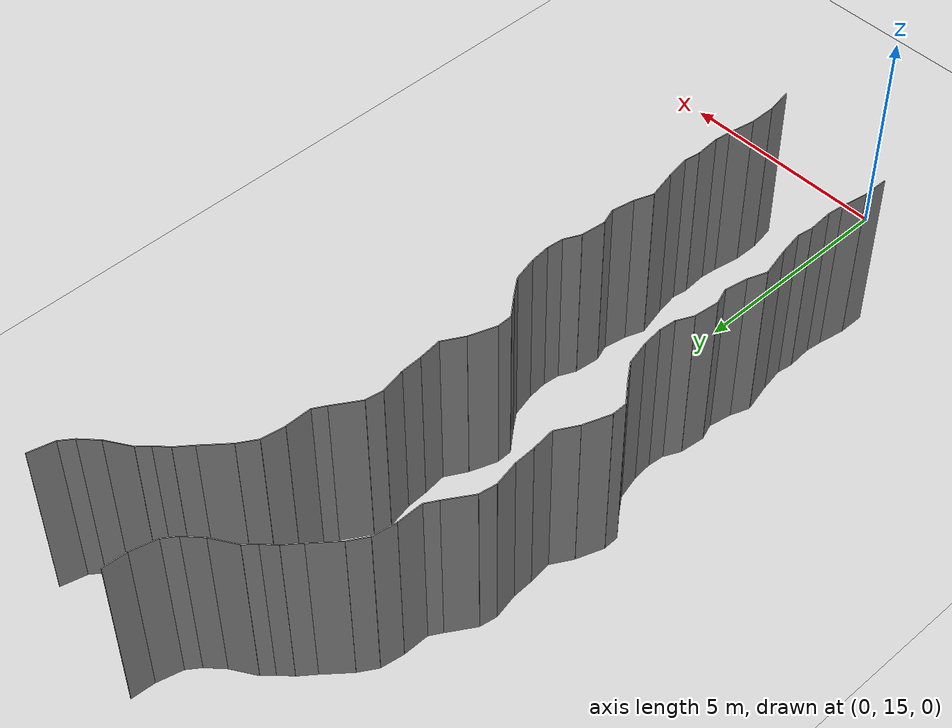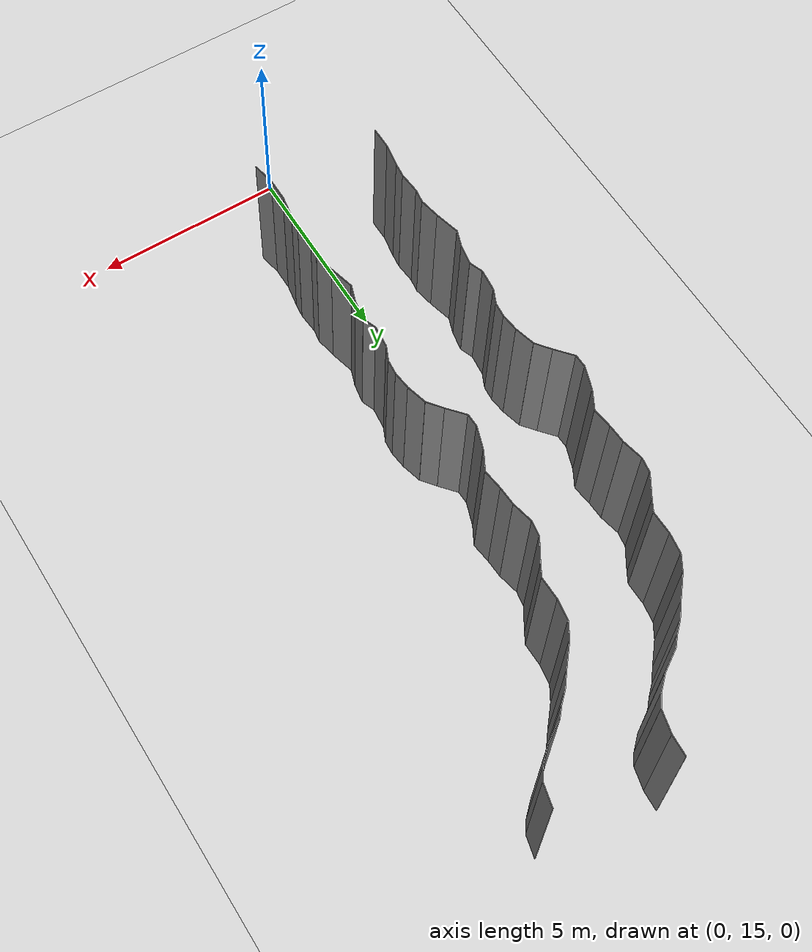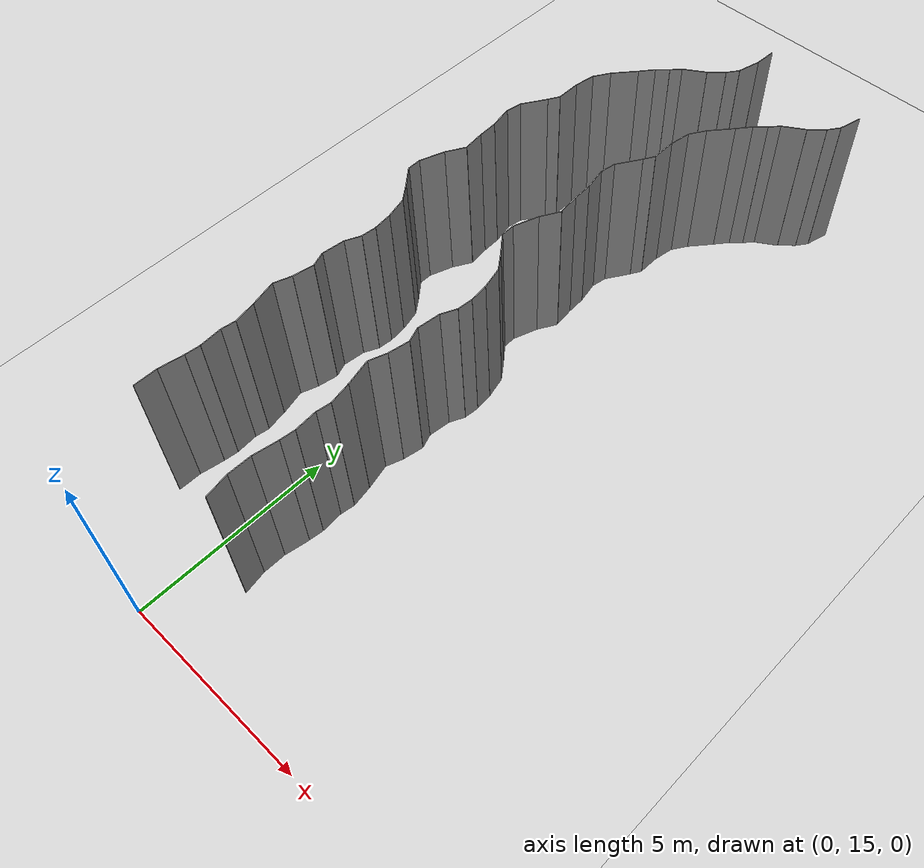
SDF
<sdf version="1.6">
 <world name="default">
  <model name="ground_plane">
   <static>1</static>
   <link name="link">
    <collision name="collision">
     <geometry><plane><normal>0 0 1</normal><size>200 200</size></plane></geometry>
     <surface><friction><ode><mu>100</mu><mu2>50</mu2></ode></friction></surface>
    </collision>
    <visual name="visual">
     <cast_shadows>0</cast_shadows>
     <geometry><plane><normal>0 0 1</normal><size>200 200</size></plane></geometry>
     <material>
      <script><uri>file://media/materials/scripts/gazebo.material</uri><name>Gazebo/Grey</name></script>
     </material>
    </visual>
   </link>
   <pose>0 100 0 0 -0 0</pose>
  </model>
  <model name="wall_73">
   <static>1</static>
   <pose>1.227396282533002 17.128168511089463 2 0 0 0.17537587751921788</pose>
   <link name="link">
    <collision name="collision"><geometry><box><size>0.02 0.591584931626 4</size></box></geometry></collision>
    <visual name="visual">
     <material>
      <script><name>Gazebo/Grey</name><uri>file://media/materials/scripts/gazebo.material</uri></script>
     </material>
     <geometry><box><size>0.02 0.591584931626 4</size></box></geometry>
    </visual>
   </link>
  </model>
  <model name="wall_74">
   <static>1</static>
   <pose>-1.8227342773542958 17.706862946428046 2 0 0 -0.005144680229264741</pose>
   <link name="link">
    <collision name="collision"><geometry><box><size>0.02 0.574885852878 4</size></box></geometry></collision>
    <visual name="visual">
     <material>
      <script><name>Gazebo/Grey</name><uri>file://media/materials/scripts/gazebo.material</uri></script>
     </material>
     <geometry><box><size>0.02 0.574885852878 4</size></box></geometry>
    </visual>
   </link>
  </model>
  <model name="wall_75">
   <static>1</static>
   <pose>1.1772657226457042 17.706862946428046 2 0 0 -0.005144680229264741</pose>
   <link name="link">
    <collision name="collision"><geometry><box><size>0.02 0.574885852878 4</size></box></geometry></collision>
    <visual name="visual">
     <material>
      <script><name>Gazebo/Grey</name><uri>file://media/materials/scripts/gazebo.material</uri></script>
     </material>
     <geometry><box><size>0.02 0.574885852878 4</size></box></geometry>
    </visual>
   </link>
  </model>
  <model name="wall_76">
   <static>1</static>
   <pose>-1.7670484953008045 18.296011256512756 2 0 0 -0.17776973445349756</pose>
   <link name="link">
    <collision name="collision"><geometry><box><size>0.02 0.613080194735 4</size></box></geometry></collision>
    <visual name="visual">
     <material>
      <script><name>Gazebo/Grey</name><uri>file://media/materials/scripts/gazebo.material</uri></script>
     </material>
     <geometry><box><size>0.02 0.613080194735 4</size></box></geometry>
    </visual>
   </link>
  </model>
  <model name="wall_77">
   <static>1</static>
   <pose>1.2329515046991955 18.296011256512756 2 0 0 -0.17776973445349756</pose>
   <link name="link">
    <collision name="collision"><geometry><box><size>0.02 0.613080194735 4</size></box></geometry></collision>
    <visual name="visual">
     <material>
      <script><name>Gazebo/Grey</name><uri>file://media/materials/scripts/gazebo.material</uri></script>
     </material>
     <geometry><box><size>0.02 0.613080194735 4</size></box></geometry>
    </visual>
   </link>
  </model>
  <model name="wall_78">
   <static>1</static>
   <pose>-1.691616229469067 18.779358773120155 2 0 0 -0.11632705927384102</pose>
   <link name="link">
    <collision name="collision"><geometry><box><size>0.02 0.36574852035 4</size></box></geometry></collision>
    <visual name="visual">
     <material>
      <script><name>Gazebo/Grey</name><uri>file://media/materials/scripts/gazebo.material</uri></script>
     </material>
     <geometry><box><size>0.02 0.36574852035 4</size></box></geometry>
    </visual>
   </link>
  </model>
  <model name="wall_79">
   <static>1</static>
   <pose>1.308383770530933 18.779358773120155 2 0 0 -0.11632705927384102</pose>
   <link name="link">
    <collision name="collision"><geometry><box><size>0.02 0.36574852035 4</size></box></geometry></collision>
    <visual name="visual">
     <material>
      <script><name>Gazebo/Grey</name><uri>file://media/materials/scripts/gazebo.material</uri></script>
     </material>
     <geometry><box><size>0.02 0.36574852035 4</size></box></geometry>
    </visual>
   </link>
  </model>
  <model name="wall_80">
   <static>1</static>
   <pose>-1.6900351141904346 19.23614180279817 2 0 0 0.07127481586271396</pose>
   <link name="link">
    <collision name="collision"><geometry><box><size>0.02 0.551690128582 4</size></box></geometry></collision>
    <visual name="visual">
     <material>
      <script><name>Gazebo/Grey</name><uri>file://media/materials/scripts/gazebo.material</uri></script>
     </material>
     <geometry><box><size>0.02 0.551690128582 4</size></box></geometry>
    </visual>
   </link>
  </model>
  <model name="wall_81">
   <static>1</static>
   <pose>1.3099648858095654 19.23614180279817 2 0 0 0.07127481586271396</pose>
   <link name="link">
    <collision name="collision"><geometry><box><size>0.02 0.551690128582 4</size></box></geometry></collision>
    <visual name="visual">
     <material>
      <script><name>Gazebo/Grey</name><uri>file://media/materials/scripts/gazebo.material</uri></script>
     </material>
     <geometry><box><size>0.02 0.551690128582 4</size></box></geometry>
    </visual>
   </link>
  </model>
  <model name="wall_82">
   <static>1</static>
   <pose>-1.6828735805820336 19.68751470379717 2 0 0 -0.15095080142722841</pose>
   <link name="link">
    <collision name="collision"><geometry><box><size>0.02 0.356510443068 4</size></box></geometry></collision>
    <visual name="visual">
     <material>
      <script><name>Gazebo/Grey</name><uri>file://media/materials/scripts/gazebo.material</uri></script>
     </material>
     <geometry><box><size>0.02 0.356510443068 4</size></box></geometry>
    </visual>
   </link>
  </model>
  <model name="wall_83">
   <static>1</static>
   <pose>1.3171264194179664 19.68751470379717 2 0 0 -0.15095080142722841</pose>
   <link name="link">
    <collision name="collision"><geometry><box><size>0.02 0.356510443068 4</size></box></geometry></collision>
    <visual name="visual">
     <material>
      <script><name>Gazebo/Grey</name><uri>file://media/materials/scripts/gazebo.material</uri></script>
     </material>
     <geometry><box><size>0.02 0.356510443068 4</size></box></geometry>
    </visual>
   </link>
  </model>
  <model name="wall_84">
   <static>1</static>
   <pose>-1.7035136882421782 20.132669639604867 2 0 0 0.1746294509358249</pose>
   <link name="link">
    <collision name="collision"><geometry><box><size>0.02 0.546160025983 4</size></box></geometry></collision>
    <visual name="visual">
     <material>
      <script><name>Gazebo/Grey</name><uri>file://media/materials/scripts/gazebo.material</uri></script>
     </material>
     <geometry><box><size>0.02 0.546160025983 4</size></box></geometry>
    </visual>
   </link>
  </model>
  <model name="wall_85">
   <static>1</static>
   <pose>1.2964863117578218 20.132669639604867 2 0 0 0.1746294509358249</pose>
   <link name="link">
    <collision name="collision"><geometry><box><size>0.02 0.546160025983 4</size></box></geometry></collision>
    <visual name="visual">
     <material>
      <script><name>Gazebo/Grey</name><uri>file://media/materials/scripts/gazebo.material</uri></script>
     </material>
     <geometry><box><size>0.02 0.546160025983 4</size></box></geometry>
    </visual>
   </link>
  </model>
  <model name="wall_86">
   <static>1</static>
   <pose>-1.829740497074928 20.723104938696643 2 0 0 0.24030073884697628</pose>
   <link name="link">
    <collision name="collision"><geometry><box><size>0.02 0.662039887014 4</size></box></geometry></collision>
    <visual name="visual">
     <material>
      <script><name>Gazebo/Grey</name><uri>file://media/materials/scripts/gazebo.material</uri></script>
     </material>
     <geometry><box><size>0.02 0.662039887014 4</size></box></geometry>
    </visual>
   </link>
  </model>
  <model name="wall_87">
   <static>1</static>
   <pose>1.170259502925072 20.723104938696643 2 0 0 0.24030073884697628</pose>
   <link name="link">
    <collision name="collision"><geometry><box><size>0.02 0.662039887014 4</size></box></geometry></collision>
    <visual name="visual">
     <material>
      <script><name>Gazebo/Grey</name><uri>file://media/materials/scripts/gazebo.material</uri></script>
     </material>
     <geometry><box><size>0.02 0.662039887014 4</size></box></geometry>
    </visual>
   </link>
  </model>
  <model name="wall_88">
   <static>1</static>
   <pose>-1.832279762551081 21.256791881495644 2 0 0 -0.3449609928496179</pose>
   <link name="link">
    <collision name="collision"><geometry><box><size>0.02 0.450921133866 4</size></box></geometry></collision>
    <visual name="visual">
     <material>
      <script><name>Gazebo/Grey</name><uri>file://media/materials/scripts/gazebo.material</uri></script>
     </material>
     <geometry><box><size>0.02 0.450921133866 4</size></box></geometry>
    </visual>
   </link>
  </model>
  <model name="wall_89">
   <static>1</static>
   <pose>1.167720237448919 21.256791881495644 2 0 0 -0.3449609928496179</pose>
   <link name="link">
    <collision name="collision"><geometry><box><size>0.02 0.450921133866 4</size></box></geometry></collision>
    <visual name="visual">
     <material>
      <script><name>Gazebo/Grey</name><uri>file://media/materials/scripts/gazebo.material</uri></script>
     </material>
     <geometry><box><size>0.02 0.450921133866 4</size></box></geometry>
    </visual>
   </link>
  </model>
  <model name="wall_90">
   <static>1</static>
   <pose>-1.7093550446414636 21.726342850405377 2 0 0 -0.17943208854441056</pose>
   <link name="link">
    <collision name="collision"><geometry><box><size>0.02 0.523144150415 4</size></box></geometry></collision>
    <visual name="visual">
     <material>
      <script><name>Gazebo/Grey</name><uri>file://media/materials/scripts/gazebo.material</uri></script>
     </material>
     <geometry><box><size>0.02 0.523144150415 4</size></box></geometry>
    </visual>
   </link>
  </model>
  <model name="wall_91">
   <static>1</static>
   <pose>1.2906449553585364 21.726342850405377 2 0 0 -0.17943208854441056</pose>
   <link name="link">
    <collision name="collision"><geometry><box><size>0.02 0.523144150415 4</size></box></geometry></collision>
    <visual name="visual">
     <material>
      <script><name>Gazebo/Grey</name><uri>file://media/materials/scripts/gazebo.material</uri></script>
     </material>
     <geometry><box><size>0.02 0.523144150415 4</size></box></geometry>
    </visual>
   </link>
  </model>
  <model name="wall_92">
   <static>1</static>
   <pose>-1.7269366725299873 22.159435951654146 2 0 0 0.35061057550222735</pose>
   <link name="link">
    <collision name="collision"><geometry><box><size>0.02 0.374206563122 4</size></box></geometry></collision>
    <visual name="visual">
     <material>
      <script><name>Gazebo/Grey</name><uri>file://media/materials/scripts/gazebo.material</uri></script>
     </material>
     <geometry><box><size>0.02 0.374206563122 4</size></box></geometry>
    </visual>
   </link>
  </model>
  <model name="wall_93">
   <static>1</static>
   <pose>1.2730633274700127 22.159435951654146 2 0 0 0.35061057550222735</pose>
   <link name="link">
    <collision name="collision"><geometry><box><size>0.02 0.374206563122 4</size></box></geometry></collision>
    <visual name="visual">
     <material>
      <script><name>Gazebo/Grey</name><uri>file://media/materials/scripts/gazebo.material</uri></script>
     </material>
     <geometry><box><size>0.02 0.374206563122 4</size></box></geometry>
    </visual>
   </link>
  </model>
  <model name="wall_94">
   <static>1</static>
   <pose>-1.7596625762787073 22.61747439624333 2 0 0 -0.11125215260719697</pose>
   <link name="link">
    <collision name="collision"><geometry><box><size>0.02 0.568148238265 4</size></box></geometry></collision>
    <visual name="visual">
     <material>
      <script><name>Gazebo/Grey</name><uri>file://media/materials/scripts/gazebo.material</uri></script>
     </material>
     <geometry><box><size>0.02 0.568148238265 4</size></box></geometry>
    </visual>
   </link>
  </model>
  <model name="wall_95">
   <static>1</static>
   <pose>1.2403374237212927 22.61747439624333 2 0 0 -0.11125215260719697</pose>
   <link name="link">
    <collision name="collision"><geometry><box><size>0.02 0.568148238265 4</size></box></geometry></collision>
    <visual name="visual">
     <material>
      <script><name>Gazebo/Grey</name><uri>file://media/materials/scripts/gazebo.material</uri></script>
     </material>
     <geometry><box><size>0.02 0.568148238265 4</size></box></geometry>
    </visual>
   </link>
  </model>
  <model name="wall_96">
   <static>1</static>
   <pose>-1.6422373684239093 23.084386083260885 2 0 0 -0.43548217808499823</pose>
   <link name="link">
    <collision name="collision"><geometry><box><size>0.02 0.407192070508 4</size></box></geometry></collision>
    <visual name="visual">
     <material>
      <script><name>Gazebo/Grey</name><uri>file://media/materials/scripts/gazebo.material</uri></script>
     </material>
     <geometry><box><size>0.02 0.407192070508 4</size></box></geometry>
    </visual>
   </link>
  </model>
  <model name="wall_97">
   <static>1</static>
   <pose>1.3577626315760907 23.084386083260885 2 0 0 -0.43548217808499823</pose>
   <link name="link">
    <collision name="collision"><geometry><box><size>0.02 0.407192070508 4</size></box></geometry></collision>
    <visual name="visual">
     <material>
      <script><name>Gazebo/Grey</name><uri>file://media/materials/scripts/gazebo.material</uri></script>
     </material>
     <geometry><box><size>0.02 0.407192070508 4</size></box></geometry>
    </visual>
   </link>
  </model>
  <model name="wall_98">
   <static>1</static>
   <pose>-1.5384671587010579 23.455636618666254 2 0 0 -0.09551907421693005</pose>
   <link name="link">
    <collision name="collision"><geometry><box><size>0.02 0.37502309788 4</size></box></geometry></collision>
    <visual name="visual">
     <material>
      <script><name>Gazebo/Grey</name><uri>file://media/materials/scripts/gazebo.material</uri></script>
     </material>
     <geometry><box><size>0.02 0.37502309788 4</size></box></geometry>
    </visual>
   </link>
  </model>
  <model name="wall_99">
   <static>1</static>
   <pose>1.4615328412989421 23.455636618666254 2 0 0 -0.09551907421693005</pose>
   <link name="link">
    <collision name="collision"><geometry><box><size>0.02 0.37502309788 4</size></box></geometry></collision>
    <visual name="visual">
     <material>
      <script><name>Gazebo/Grey</name><uri>file://media/materials/scripts/gazebo.material</uri></script>
     </material>
     <geometry><box><size>0.02 0.37502309788 4</size></box></geometry>
    </visual>
   </link>
  </model>
  <model name="wall_100">
   <static>1</static>
   <pose>-1.5440181061030223 23.868431901544568 2 0 0 0.10326105623484885</pose>
   <link name="link">
    <collision name="collision"><geometry><box><size>0.02 0.454699042464 4</size></box></geometry></collision>
    <visual name="visual">
     <material>
      <script><name>Gazebo/Grey</name><uri>file://media/materials/scripts/gazebo.material</uri></script>
     </material>
     <geometry><box><size>0.02 0.454699042464 4</size></box></geometry>
    </visual>
   </link>
  </model>
  <model name="wall_101">
   <static>1</static>
   <pose>1.4559818938969777 23.868431901544568 2 0 0 0.10326105623484885</pose>
   <link name="link">
    <collision name="collision"><geometry><box><size>0.02 0.454699042464 4</size></box></geometry></collision>
    <visual name="visual">
     <material>
      <script><name>Gazebo/Grey</name><uri>file://media/materials/scripts/gazebo.material</uri></script>
     </material>
     <geometry><box><size>0.02 0.454699042464 4</size></box></geometry>
    </visual>
   </link>
  </model>
  <model name="wall_102">
   <static>1</static>
   <pose>-1.6355918357815953 24.362083881314156 2 0 0 0.24940919015209845</pose>
   <link name="link">
    <collision name="collision"><geometry><box><size>0.02 0.552110115231 4</size></box></geometry></collision>
    <visual name="visual">
     <material>
      <script><name>Gazebo/Grey</name><uri>file://media/materials/scripts/gazebo.material</uri></script>
     </material>
     <geometry><box><size>0.02 0.552110115231 4</size></box></geometry>
    </visual>
   </link>
  </model>
  <model name="wall_103">
   <static>1</static>
   <pose>1.3644081642184047 24.362083881314156 2 0 0 0.24940919015209845</pose>
   <link name="link">
    <collision name="collision"><geometry><box><size>0.02 0.552110115231 4</size></box></geometry></collision>
    <visual name="visual">
     <material>
      <script><name>Gazebo/Grey</name><uri>file://media/materials/scripts/gazebo.material</uri></script>
     </material>
     <geometry><box><size>0.02 0.552110115231 4</size></box></geometry>
    </visual>
   </link>
  </model>
  <model name="wall_104">
   <static>1</static>
   <pose>-1.8475270115691735 24.81418393372952 2 0 0 0.6618149037037732</pose>
   <link name="link">
    <collision name="collision"><geometry><box><size>0.02 0.467972313269 4</size></box></geometry></collision>
    <visual name="visual">
     <material>
      <script><name>Gazebo/Grey</name><uri>file://media/materials/scripts/gazebo.material</uri></script>
     </material>
     <geometry><box><size>0.02 0.467972313269 4</size></box></geometry>
    </visual>
   </link>
  </model>
  <model name="wall_105">
   <static>1</static>
   <pose>1.1524729884308265 24.81418393372952 2 0 0 0.6618149037037732</pose>
   <link name="link">
    <collision name="collision"><geometry><box><size>0.02 0.467972313269 4</size></box></geometry></collision>
    <visual name="visual">
     <material>
      <script><name>Gazebo/Grey</name><uri>file://media/materials/scripts/gazebo.material</uri></script>
     </material>
     <geometry><box><size>0.02 0.467972313269 4</size></box></geometry>
    </visual>
   </link>
  </model>
  <model name="wall_106">
   <static>1</static>
   <pose>-2.171874111939357 25.21110038089921 2 0 0 0.7046870914116984</pose>
   <link name="link">
    <collision name="collision"><geometry><box><size>0.02 0.557432108886 4</size></box></geometry></collision>
    <visual name="visual">
     <material>
      <script><name>Gazebo/Grey</name><uri>file://media/materials/scripts/gazebo.material</uri></script>
     </material>
     <geometry><box><size>0.02 0.557432108886 4</size></box></geometry>
    </visual>
   </link>
  </model>
  <model name="wall_107">
   <static>1</static>
   <pose>0.8281258880606428 25.21110038089921 2 0 0 0.7046870914116984</pose>
   <link name="link">
    <collision name="collision"><geometry><box><size>0.02 0.557432108886 4</size></box></geometry></collision>
    <visual name="visual">
     <material>
      <script><name>Gazebo/Grey</name><uri>file://media/materials/scripts/gazebo.material</uri></script>
     </material>
     <geometry><box><size>0.02 0.557432108886 4</size></box></geometry>
    </visual>
   </link>
  </model>
  <model name="wall_108">
   <static>1</static>
   <pose>-2.356289508214857 25.59463390449687 2 0 0 0.022568088116974756</pose>
   <link name="link">
    <collision name="collision"><geometry><box><size>0.02 0.342494516752 4</size></box></geometry></collision>
    <visual name="visual">
     <material>
      <script><name>Gazebo/Grey</name><uri>file://media/materials/scripts/gazebo.material</uri></script>
     </material>
     <geometry><box><size>0.02 0.342494516752 4</size></box></geometry>
    </visual>
   </link>
  </model>
  <model name="wall_109">
   <static>1</static>
   <pose>0.6437104917851428 25.59463390449687 2 0 0 0.022568088116974756</pose>
   <link name="link">
    <collision name="collision"><geometry><box><size>0.02 0.342494516752 4</size></box></geometry></collision>
    <visual name="visual">
     <material>
      <script><name>Gazebo/Grey</name><uri>file://media/materials/scripts/gazebo.material</uri></script>
     </material>
     <geometry><box><size>0.02 0.342494516752 4</size></box></geometry>
    </visual>
   </link>
  </model>
  <model name="wall_110">
   <static>1</static>
   <pose>-2.253693921335396 26.067307298571848 2 0 0 -0.339466326733296</pose>
   <link name="link">
    <collision name="collision"><geometry><box><size>0.02 0.639430165243 4</size></box></geometry></collision>
    <visual name="visual">
     <material>
      <script><name>Gazebo/Grey</name><uri>file://media/materials/scripts/gazebo.material</uri></script>
     </material>
     <geometry><box><size>0.02 0.639430165243 4</size></box></geometry>
    </visual>
   </link>
  </model>
  <model name="wall_111">
   <static>1</static>
   <pose>0.7463060786646039 26.067307298571848 2 0 0 -0.339466326733296</pose>
   <link name="link">
    <collision name="collision"><geometry><box><size>0.02 0.639430165243 4</size></box></geometry></collision>
    <visual name="visual">
     <material>
      <script><name>Gazebo/Grey</name><uri>file://media/materials/scripts/gazebo.material</uri></script>
     </material>
     <geometry><box><size>0.02 0.639430165243 4</size></box></geometry>
    </visual>
   </link>
  </model>
  <model name="wall_112">
   <static>1</static>
   <pose>-2.015832256158006 26.60202654221529 2 0 0 -0.5130368017625014</pose>
   <link name="link">
    <collision name="collision"><geometry><box><size>0.02 0.535431532961 4</size></box></geometry></collision>
    <visual name="visual">
     <material>
      <script><name>Gazebo/Grey</name><uri>file://media/materials/scripts/gazebo.material</uri></script>
     </material>
     <geometry><box><size>0.02 0.535431532961 4</size></box></geometry>
    </visual>
   </link>
  </model>
  <model name="wall_113">
   <static>1</static>
   <pose>0.984167743841994 26.60202654221529 2 0 0 -0.5130368017625014</pose>
   <link name="link">
    <collision name="collision"><geometry><box><size>0.02 0.535431532961 4</size></box></geometry></collision>
    <visual name="visual">
     <material>
      <script><name>Gazebo/Grey</name><uri>file://media/materials/scripts/gazebo.material</uri></script>
     </material>
     <geometry><box><size>0.02 0.535431532961 4</size></box></geometry>
    </visual>
   </link>
  </model>
  <model name="wall_114">
   <static>1</static>
   <pose>-1.9151564738372588 27.098116875721406 2 0 0 0.1163710978192909</pose>
   <link name="link">
    <collision name="collision"><geometry><box><size>0.02 0.529261314259 4</size></box></geometry></collision>
    <visual name="visual">
     <material>
      <script><name>Gazebo/Grey</name><uri>file://media/materials/scripts/gazebo.material</uri></script>
     </material>
     <geometry><box><size>0.02 0.529261314259 4</size></box></geometry>
    </visual>
   </link>
  </model>
  <model name="wall_115">
   <static>1</static>
   <pose>1.0848435261627412 27.098116875721406 2 0 0 0.1163710978192909</pose>
   <link name="link">
    <collision name="collision"><geometry><box><size>0.02 0.529261314259 4</size></box></geometry></collision>
    <visual name="visual">
     <material>
      <script><name>Gazebo/Grey</name><uri>file://media/materials/scripts/gazebo.material</uri></script>
     </material>
     <geometry><box><size>0.02 0.529261314259 4</size></box></geometry>
    </visual>
   </link>
  </model>
  <model name="wall_116">
   <static>1</static>
   <pose>-1.9566114735248956 27.599945468614496 2 0 0 0.04486380206610393</pose>
   <link name="link">
    <collision name="collision"><geometry><box><size>0.02 0.478456947871 4</size></box></geometry></collision>
    <visual name="visual">
     <material>
      <script><name>Gazebo/Grey</name><uri>file://media/materials/scripts/gazebo.material</uri></script>
     </material>
     <geometry><box><size>0.02 0.478456947871 4</size></box></geometry>
    </visual>
   </link>
  </model>
  <model name="wall_117">
   <static>1</static>
   <pose>1.0433885264751044 27.599945468614496 2 0 0 0.04486380206610393</pose>
   <link name="link">
    <collision name="collision"><geometry><box><size>0.02 0.478456947871 4</size></box></geometry></collision>
    <visual name="visual">
     <material>
      <script><name>Gazebo/Grey</name><uri>file://media/materials/scripts/gazebo.material</uri></script>
     </material>
     <geometry><box><size>0.02 0.478456947871 4</size></box></geometry>
    </visual>
   </link>
  </model>
  <model name="wall_118">
   <static>1</static>
   <pose>-2.0255637983662638 28.11811857557441 2 0 0 0.2056000194698851</pose>
   <link name="link">
    <collision name="collision"><geometry><box><size>0.02 0.570383738521 4</size></box></geometry></collision>
    <visual name="visual">
     <material>
      <script><name>Gazebo/Grey</name><uri>file://media/materials/scripts/gazebo.material</uri></script>
     </material>
     <geometry><box><size>0.02 0.570383738521 4</size></box></geometry>
    </visual>
   </link>
  </model>
  <model name="wall_119">
   <static>1</static>
   <pose>0.9744362016337362 28.11811857557441 2 0 0 0.2056000194698851</pose>
   <link name="link">
    <collision name="collision"><geometry><box><size>0.02 0.570383738521 4</size></box></geometry></collision>
    <visual name="visual">
     <material>
      <script><name>Gazebo/Grey</name><uri>file://media/materials/scripts/gazebo.material</uri></script>
     </material>
     <geometry><box><size>0.02 0.570383738521 4</size></box></geometry>
    </visual>
   </link>
  </model>
  <model name="wall_120">
   <static>1</static>
   <pose>-2.051521615075277 28.59190915788049 2 0 0 -0.1643046223178287</pose>
   <link name="link">
    <collision name="collision"><geometry><box><size>0.02 0.394523784097 4</size></box></geometry></collision>
    <visual name="visual">
     <material>
      <script><name>Gazebo/Grey</name><uri>file://media/materials/scripts/gazebo.material</uri></script>
     </material>
     <geometry><box><size>0.02 0.394523784097 4</size></box></geometry>
    </visual>
   </link>
  </model>
  <model name="wall_121">
   <static>1</static>
   <pose>0.9484783849247229 28.59190915788049 2 0 0 -0.1643046223178287</pose>
   <link name="link">
    <collision name="collision"><geometry><box><size>0.02 0.394523784097 4</size></box></geometry></collision>
    <visual name="visual">
     <material>
      <script><name>Gazebo/Grey</name><uri>file://media/materials/scripts/gazebo.material</uri></script>
     </material>
     <geometry><box><size>0.02 0.394523784097 4</size></box></geometry>
    </visual>
   </link>
  </model>
  <model name="wall_122">
   <static>1</static>
   <pose>-1.8370071445327694 29.07670693120865 2 0 0 -0.5607738445235207</pose>
   <link name="link">
    <collision name="collision"><geometry><box><size>0.02 0.685350799937 4</size></box></geometry></collision>
    <visual name="visual">
     <material>
      <script><name>Gazebo/Grey</name><uri>file://media/materials/scripts/gazebo.material</uri></script>
     </material>
     <geometry><box><size>0.02 0.685350799937 4</size></box></geometry>
    </visual>
   </link>
  </model>
  <model name="wall_123">
   <static>1</static>
   <pose>1.1629928554672306 29.07670693120865 2 0 0 -0.5607738445235207</pose>
   <link name="link">
    <collision name="collision"><geometry><box><size>0.02 0.685350799937 4</size></box></geometry></collision>
    <visual name="visual">
     <material>
      <script><name>Gazebo/Grey</name><uri>file://media/materials/scripts/gazebo.material</uri></script>
     </material>
     <geometry><box><size>0.02 0.685350799937 4</size></box></geometry>
    </visual>
   </link>
  </model>
  <model name="wall_124">
   <static>1</static>
   <pose>-1.577812477531256 29.501189754744654 2 0 0 -0.5203146367660901</pose>
   <link name="link">
    <collision name="collision"><geometry><box><size>0.02 0.309544871659 4</size></box></geometry></collision>
    <visual name="visual">
     <material>
      <script><name>Gazebo/Grey</name><uri>file://media/materials/scripts/gazebo.material</uri></script>
     </material>
     <geometry><box><size>0.02 0.309544871659 4</size></box></geometry>
    </visual>
   </link>
  </model>
  <model name="wall_125">
   <static>1</static>
   <pose>1.422187522468744 29.501189754744654 2 0 0 -0.5203146367660901</pose>
   <link name="link">
    <collision name="collision"><geometry><box><size>0.02 0.309544871659 4</size></box></geometry></collision>
    <visual name="visual">
     <material>
      <script><name>Gazebo/Grey</name><uri>file://media/materials/scripts/gazebo.material</uri></script>
     </material>
     <geometry><box><size>0.02 0.309544871659 4</size></box></geometry>
    </visual>
   </link>
  </model>
  <model name="wall_126">
   <static>1</static>
   <pose>-1.5034667518714346 29.933142419287126 2 0 0 0.008734103221794248</pose>
   <link name="link">
    <collision name="collision"><geometry><box><size>0.02 0.595347466792 4</size></box></geometry></collision>
    <visual name="visual">
     <material>
      <script><name>Gazebo/Grey</name><uri>file://media/materials/scripts/gazebo.material</uri></script>
     </material>
     <geometry><box><size>0.02 0.595347466792 4</size></box></geometry>
    </visual>
   </link>
  </model>
  <model name="wall_127">
   <static>1</static>
   <pose>1.4965332481285654 29.933142419287126 2 0 0 0.008734103221794248</pose>
   <link name="link">
    <collision name="collision"><geometry><box><size>0.02 0.595347466792 4</size></box></geometry></collision>
    <visual name="visual">
     <material>
      <script><name>Gazebo/Grey</name><uri>file://media/materials/scripts/gazebo.material</uri></script>
     </material>
     <geometry><box><size>0.02 0.595347466792 4</size></box></geometry>
    </visual>
   </link>
  </model>
  <model name="wall_128">
   <static>1</static>
   <pose>-1.4658227782432278 30.491095463108913 2 0 0 -0.15339660604990074</pose>
   <link name="link">
    <collision name="collision"><geometry><box><size>0.02 0.52676673276 4</size></box></geometry></collision>
    <visual name="visual">
     <material>
      <script><name>Gazebo/Grey</name><uri>file://media/materials/scripts/gazebo.material</uri></script>
     </material>
     <geometry><box><size>0.02 0.52676673276 4</size></box></geometry>
    </visual>
   </link>
  </model>
  <model name="wall_129">
   <static>1</static>
   <pose>1.5341772217567722 30.491095463108913 2 0 0 -0.15339660604990074</pose>
   <link name="link">
    <collision name="collision"><geometry><box><size>0.02 0.52676673276 4</size></box></geometry></collision>
    <visual name="visual">
     <material>
      <script><name>Gazebo/Grey</name><uri>file://media/materials/scripts/gazebo.material</uri></script>
     </material>
     <geometry><box><size>0.02 0.52676673276 4</size></box></geometry>
    </visual>
   </link>
  </model>
  <model name="wall_130">
   <static>1</static>
   <pose>-1.3066895981131168 30.946535435166233 2 0 0 -0.5471730833598748</pose>
   <link name="link">
    <collision name="collision"><geometry><box><size>0.02 0.45702483196 4</size></box></geometry></collision>
    <visual name="visual">
     <material>
      <script><name>Gazebo/Grey</name><uri>file://media/materials/scripts/gazebo.material</uri></script>
     </material>
     <geometry><box><size>0.02 0.45702483196 4</size></box></geometry>
    </visual>
   </link>
  </model>
  <model name="wall_131">
   <static>1</static>
   <pose>1.6933104018868832 30.946535435166233 2 0 0 -0.5471730833598748</pose>
   <link name="link">
    <collision name="collision"><geometry><box><size>0.02 0.45702483196 4</size></box></geometry></collision>
    <visual name="visual">
     <material>
      <script><name>Gazebo/Grey</name><uri>file://media/materials/scripts/gazebo.material</uri></script>
     </material>
     <geometry><box><size>0.02 0.45702483196 4</size></box></geometry>
    </visual>
   </link>
  </model>
  <model name="wall_132">
   <static>1</static>
   <pose>-0.9644696872062621 31.406366964958302 2 0 0 -0.7008653534239835</pose>
   <link name="link">
    <collision name="collision"><geometry><box><size>0.02 0.692627543843 4</size></box></geometry></collision>
    <visual name="visual">
     <material>
      <script><name>Gazebo/Grey</name><uri>file://media/materials/scripts/gazebo.material</uri></script>
     </material>
     <geometry><box><size>0.02 0.692627543843 4</size></box></geometry>
    </visual>
   </link>
  </model>
  <model name="wall_133">
   <static>1</static>
   <pose>2.035530312793738 31.406366964958302 2 0 0 -0.7008653534239835</pose>
   <link name="link">
    <collision name="collision"><geometry><box><size>0.02 0.692627543843 4</size></box></geometry></collision>
    <visual name="visual">
     <material>
      <script><name>Gazebo/Grey</name><uri>file://media/materials/scripts/gazebo.material</uri></script>
     </material>
     <geometry><box><size>0.02 0.692627543843 4</size></box></geometry>
    </visual>
   </link>
  </model>
  <model name="wall_134">
   <static>1</static>
   <pose>-0.608829648258707 31.837725157167217 2 0 0 -0.6709566205138324</pose>
   <link name="link">
    <collision name="collision"><geometry><box><size>0.02 0.425613302314 4</size></box></geometry></collision>
    <visual name="visual">
     <material>
      <script><name>Gazebo/Grey</name><uri>file://media/materials/scripts/gazebo.material</uri></script>
     </material>
     <geometry><box><size>0.02 0.425613302314 4</size></box></geometry>
    </visual>
   </link>
  </model>
  <model name="wall_135">
   <static>1</static>
   <pose>2.3911703517412928 31.837725157167217 2 0 0 -0.6709566205138324</pose>
   <link name="link">
    <collision name="collision"><geometry><box><size>0.02 0.425613302314 4</size></box></geometry></collision>
    <visual name="visual">
     <material>
      <script><name>Gazebo/Grey</name><uri>file://media/materials/scripts/gazebo.material</uri></script>
     </material>
     <geometry><box><size>0.02 0.425613302314 4</size></box></geometry>
    </visual>
   </link>
  </model>
  <model name="wall_136">
   <static>1</static>
   <pose>-0.3459214497662918 32.12586623798988 2 0 0 -0.8216177118571469</pose>
   <link name="link">
    <collision name="collision"><geometry><box><size>0.02 0.356706069718 4</size></box></geometry></collision>
    <visual name="visual">
     <material>
      <script><name>Gazebo/Grey</name><uri>file://media/materials/scripts/gazebo.material</uri></script>
     </material>
     <geometry><box><size>0.02 0.356706069718 4</size></box></geometry>
    </visual>
   </link>
  </model>
  <model name="wall_137">
   <static>1</static>
   <pose>2.654078550233708 32.12586623798988 2 0 0 -0.8216177118571469</pose>
   <link name="link">
    <collision name="collision"><geometry><box><size>0.02 0.356706069718 4</size></box></geometry></collision>
    <visual name="visual">
     <material>
      <script><name>Gazebo/Grey</name><uri>file://media/materials/scripts/gazebo.material</uri></script>
     </material>
     <geometry><box><size>0.02 0.356706069718 4</size></box></geometry>
    </visual>
   </link>
  </model>
  <model name="wall_138">
   <static>1</static>
   <pose>-0.1135345559596368 32.3626801742196 2 0 0 -0.7230269952544127</pose>
   <link name="link">
    <collision name="collision"><geometry><box><size>0.02 0.307676316933 4</size></box></geometry></collision>
    <visual name="visual">
     <material>
      <script><name>Gazebo/Grey</name><uri>file://media/materials/scripts/gazebo.material</uri></script>
     </material>
     <geometry><box><size>0.02 0.307676316933 4</size></box></geometry>
    </visual>
   </link>
  </model>
  <model name="wall_139">
   <static>1</static>
   <pose>2.886465444040363 32.3626801742196 2 0 0 -0.7230269952544127</pose>
   <link name="link">
    <collision name="collision"><geometry><box><size>0.02 0.307676316933 4</size></box></geometry></collision>
    <visual name="visual">
     <material>
      <script><name>Gazebo/Grey</name><uri>file://media/materials/scripts/gazebo.material</uri></script>
     </material>
     <geometry><box><size>0.02 0.307676316933 4</size></box></geometry>
    </visual>
   </link>
  </model>
  <model name="wall_140">
   <static>1</static>
   <pose>0.2478657778889543 32.64209513359469 2 0 0 -1.0072032625317409</pose>
   <link name="link">
    <collision name="collision"><geometry><box><size>0.02 0.614218796092 4</size></box></geometry></collision>
    <visual name="visual">
     <material>
      <script><name>Gazebo/Grey</name><uri>file://media/materials/scripts/gazebo.material</uri></script>
     </material>
     <geometry><box><size>0.02 0.614218796092 4</size></box></geometry>
    </visual>
   </link>
  </model>
  <model name="wall_141">
   <static>1</static>
   <pose>3.247865777888954 32.64209513359469 2 0 0 -1.0072032625317409</pose>
   <link name="link">
    <collision name="collision"><geometry><box><size>0.02 0.614218796092 4</size></box></geometry></collision>
    <visual name="visual">
     <material>
      <script><name>Gazebo/Grey</name><uri>file://media/materials/scripts/gazebo.material</uri></script>
     </material>
     <geometry><box><size>0.02 0.614218796092 4</size></box></geometry>
    </visual>
   </link>
  </model>
  <model name="wall_142">
   <static>1</static>
   <pose>0.6796942562984528 32.9677856690934 2 0 0 -0.8171149100510353</pose>
   <link name="link">
    <collision name="collision"><geometry><box><size>0.02 0.472359605667 4</size></box></geometry></collision>
    <visual name="visual">
     <material>
      <script><name>Gazebo/Grey</name><uri>file://media/materials/scripts/gazebo.material</uri></script>
     </material>
     <geometry><box><size>0.02 0.472359605667 4</size></box></geometry>
    </visual>
   </link>
  </model>
  <model name="wall_143">
   <static>1</static>
   <pose>3.6796942562984527 32.9677856690934 2 0 0 -0.8171149100510353</pose>
   <link name="link">
    <collision name="collision"><geometry><box><size>0.02 0.472359605667 4</size></box></geometry></collision>
    <visual name="visual">
     <material>
      <script><name>Gazebo/Grey</name><uri>file://media/materials/scripts/gazebo.material</uri></script>
     </material>
     <geometry><box><size>0.02 0.472359605667 4</size></box></geometry>
    </visual>
   </link>
  </model>
  <model name="wall_144">
   <static>1</static>
   <pose>0.9525081531178275 33.26774660976915 2 0 0 -0.6287452717350127</pose>
   <link name="link">
    <collision name="collision"><geometry><box><size>0.02 0.342092827388 4</size></box></geometry></collision>
    <visual name="visual">
     <material>
      <script><name>Gazebo/Grey</name><uri>file://media/materials/scripts/gazebo.material</uri></script>
     </material>
     <geometry><box><size>0.02 0.342092827388 4</size></box></geometry>
    </visual>
   </link>
  </model>
  <model name="wall_145">
   <static>1</static>
   <pose>3.9525081531178277 33.26774660976915 2 0 0 -0.6287452717350127</pose>
   <link name="link">
    <collision name="collision"><geometry><box><size>0.02 0.342092827388 4</size></box></geometry></collision>
    <visual name="visual">
     <material>
      <script><name>Gazebo/Grey</name><uri>file://media/materials/scripts/gazebo.material</uri></script>
     </material>
     <geometry><box><size>0.02 0.342092827388 4</size></box></geometry>
    </visual>
   </link>
  </model>
  <model name="wall_146">
   <static>1</static>
   <pose>1.1238575863297626 33.690915513860496 2 0 0 -0.2434704663353457</pose>
   <link name="link">
    <collision name="collision"><geometry><box><size>0.02 0.586976312197 4</size></box></geometry></collision>
    <visual name="visual">
     <material>
      <script><name>Gazebo/Grey</name><uri>file://media/materials/scripts/gazebo.material</uri></script>
     </material>
     <geometry><box><size>0.02 0.586976312197 4</size></box></geometry>
    </visual>
   </link>
  </model>
  <model name="wall_147">
   <static>1</static>
   <pose>4.123857586329763 33.690915513860496 2 0 0 -0.2434704663353457</pose>
   <link name="link">
    <collision name="collision"><geometry><box><size>0.02 0.586976312197 4</size></box></geometry></collision>
    <visual name="visual">
     <material>
      <script><name>Gazebo/Grey</name><uri>file://media/materials/scripts/gazebo.material</uri></script>
     </material>
     <geometry><box><size>0.02 0.586976312197 4</size></box></geometry>
    </visual>
   </link>
  </model>
  <model name="wall_148">
   <static>1</static>
   <pose>1.2100105926711737 34.243823637815694 2 0 0 -0.05738775027221445</pose>
   <link name="link">
    <collision name="collision"><geometry><box><size>0.02 0.537035599151 4</size></box></geometry></collision>
    <visual name="visual">
     <material>
      <script><name>Gazebo/Grey</name><uri>file://media/materials/scripts/gazebo.material</uri></script>
     </material>
     <geometry><box><size>0.02 0.537035599151 4</size></box></geometry>
    </visual>
   </link>
  </model>
 </world>
</sdf>
